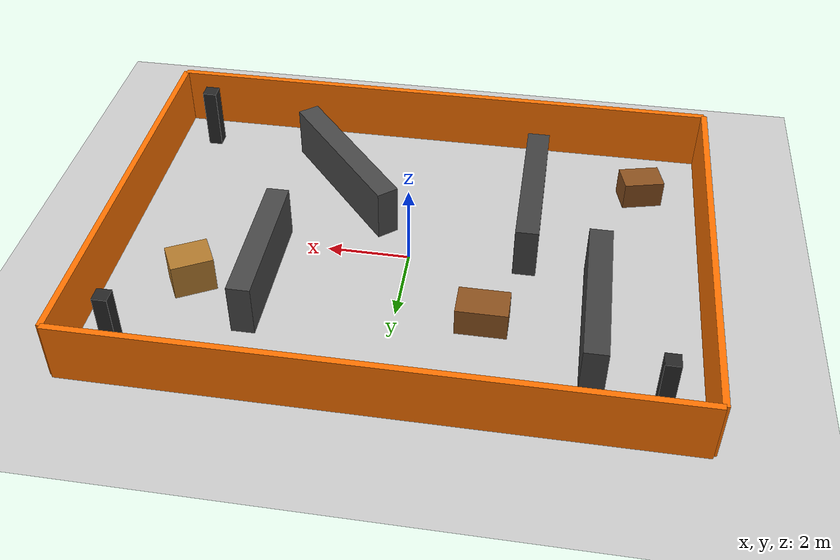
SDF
<?xml version="1.0" ?> <!-- This line says the file is XML. Gazebo world files are XML-based. -->
<sdf version="1.6"> <!-- starts the SDF document. SDF means Simulation Description Format. URDF/Xacro describes the robot.
SDF describes the Gazebo simulation world.-->
<!--This File defines the Gazebo environment your robot drives in -->
  <world name="warehouse_world"> <!-- This creates a Gazebo world named warehouse_world -->

    <include> <!-- includes Gazebo’s built-in sun model. It gives the world default lighting.-->
      <uri>model://sun</uri>
    </include>

    <include>
      <uri>model://ground_plane</uri>
    </include>

    <scene>
      <ambient>0.65 0.65 0.65 1</ambient>
      <background>0.75 0.78 0.82 1</background>
      <shadows>true</shadows>
    </scene>

    <physics name="default_physics" default="0" type="ode">
      <max_step_size>0.001</max_step_size>
      <real_time_factor>1.0</real_time_factor>
      <real_time_update_rate>1000</real_time_update_rate>
    </physics>

    <!-- Outer walls: 14 m x 10 m room                         -->

    <model name="north_wall">
      <static>true</static>
      <pose>0 5 0.75 0 0 0</pose>
      <link name="link">
        <collision name="collision">
          <geometry><box><size>14 0.15 1.5</size></box></geometry>
        </collision>
        <visual name="visual">
          <geometry><box><size>14 0.15 1.5</size></box></geometry>
          <material>
            <ambient>1.0 0.45 0.0 1</ambient>
            <diffuse>1.0 0.45 0.0 1</diffuse>
          </material>
        </visual>
      </link>
    </model>

    <model name="south_wall">
      <static>true</static>
      <pose>0 -5 0.75 0 0 0</pose>
      <link name="link">
        <collision name="collision">
          <geometry><box><size>14 0.15 1.5</size></box></geometry>
        </collision>
        <visual name="visual">
          <geometry><box><size>14 0.15 1.5</size></box></geometry>
          <material>
            <ambient>1.0 0.45 0.0 1</ambient>
            <diffuse>1.0 0.45 0.0 1</diffuse>
          </material>
        </visual>
      </link>
    </model>

    <model name="east_wall">
      <static>true</static>
      <pose>7 0 0.75 0 0 0</pose>
      <link name="link">
        <collision name="collision">
          <geometry><box><size>0.15 10 1.5</size></box></geometry>
        </collision>
        <visual name="visual">
          <geometry><box><size>0.15 10 1.5</size></box></geometry>
          <material>
            <ambient>1.0 0.45 0.0 1</ambient>
            <diffuse>1.0 0.45 0.0 1</diffuse>
          </material>
        </visual>
      </link>
    </model>

    <model name="west_wall">
      <static>true</static>
      <pose>-7 0 0.75 0 0 0</pose>
      <link name="link">
        <collision name="collision">
          <geometry><box><size>0.15 10 1.5</size></box></geometry>
        </collision>
        <visual name="visual">
          <geometry><box><size>0.15 10 1.5</size></box></geometry>
          <material>
            <ambient>1.0 0.45 0.0 1</ambient>
            <diffuse>1.0 0.45 0.0 1</diffuse>
          </material>
        </visual>
      </link>
    </model>

    <!-- Shelf rows / aisles                                   -->

    <model name="left_shelf_1">
      <static>true</static>
      <pose>-4.5 1.8 0.65 0 0 0</pose>
      <link name="link">
        <collision name="collision">
          <geometry><box><size>0.55 4.0 1.3</size></box></geometry>
        </collision>
        <visual name="visual">
          <geometry><box><size>0.55 4.0 1.3</size></box></geometry>
          <material>
            <ambient>0.25 0.25 0.25 1</ambient>
            <diffuse>0.25 0.25 0.25 1</diffuse>
          </material>
        </visual>
      </link>
    </model>

    <model name="left_shelf_2">
      <static>true</static>
      <pose>-2.8 -1.8 0.65 0 0 0</pose>
      <link name="link">
        <collision name="collision">
          <geometry><box><size>0.55 4.0 1.3</size></box></geometry>
        </collision>
        <visual name="visual">
          <geometry><box><size>0.55 4.0 1.3</size></box></geometry>
          <material>
            <ambient>0.25 0.25 0.25 1</ambient>
            <diffuse>0.25 0.25 0.25 1</diffuse>
          </material>
        </visual>
      </link>
    </model>

    <model name="middle_shelf_1">
      <static>true</static>
      <pose>2.0 -2.4 0.65 0 0 0.7</pose>
      <link name="link">
        <collision name="collision">
          <geometry><box><size>0.55 4.2 1.3</size></box></geometry>
        </collision>
        <visual name="visual">
          <geometry><box><size>0.55 4.2 1.3</size></box></geometry>
          <material>
            <ambient>0.28 0.28 0.28 1</ambient>
            <diffuse>0.28 0.28 0.28 1</diffuse>
          </material>
        </visual>
      </link>
    </model>

    <model name="right_shelf_1">
      <static>true</static>
      <pose>3.3 1.3 0.65 0 0 0</pose>
      <link name="link">
        <collision name="collision">
          <geometry><box><size>0.55 3.6 1.3</size></box></geometry>
        </collision>
        <visual name="visual">
          <geometry><box><size>0.55 3.6 1.3</size></box></geometry>
          <material>
            <ambient>0.28 0.28 0.28 1</ambient>
            <diffuse>0.28 0.28 0.28 1</diffuse>
          </material>
        </visual>
      </link>
    </model>

    <!-- Boxes / pallets                                       -->

    <model name="pallet_1">
      <static>true</static>
      <pose>-5.5 -3.2 0.35 0 0 0.25</pose>
      <link name="link">
        <collision name="collision">
          <geometry><box><size>1.0 0.7 0.7</size></box></geometry>
        </collision>
        <visual name="visual">
          <geometry><box><size>1.0 0.7 0.7</size></box></geometry>
          <material>
            <ambient>0.55 0.32 0.12 1</ambient>
            <diffuse>0.55 0.32 0.12 1</diffuse>
          </material>
        </visual>
      </link>
    </model>

    <model name="pallet_2">
      <static>true</static>
      <pose>-2.0 2.0 0.35 0 0 0.0</pose>
      <link name="link">
        <collision name="collision">
          <geometry><box><size>1.2 0.8 0.7</size></box></geometry>
        </collision>
        <visual name="visual">
          <geometry><box><size>1.2 0.8 0.7</size></box></geometry>
          <material>
            <ambient>0.55 0.32 0.12 1</ambient>
            <diffuse>0.55 0.32 0.12 1</diffuse>
          </material>
        </visual>
      </link>
    </model>

    <model name="box_stack_1">
      <static>true</static>
      <pose>4.9 1.7 0.45 0 0 0.5</pose>
      <link name="link">
        <collision name="collision">
          <geometry><box><size>1.0 0.8 0.9</size></box></geometry>
        </collision>
        <visual name="visual">
          <geometry><box><size>1.0 0.8 0.9</size></box></geometry>
          <material>
            <ambient>0.70 0.48 0.18 1</ambient>
            <diffuse>0.70 0.48 0.18 1</diffuse>
          </material>
        </visual>
      </link>
    </model>
    <!-- Pillars                                               -->

    <model name="pillar_1">
      <static>true</static>
      <pose>-6 4 0.8 0 0 0</pose>
      <link name="link">
        <collision name="collision">
          <geometry><box><size>0.35 0.35 1.6</size></box></geometry>
        </collision>
        <visual name="visual">
          <geometry><box><size>0.35 0.35 1.6</size></box></geometry>
          <material>
            <ambient>0.15 0.15 0.15 1</ambient>
            <diffuse>0.15 0.15 0.15 1</diffuse>
          </material>
        </visual>
      </link>
    </model>

    <model name="pillar_2">
      <static>true</static>
      <pose>6 4 0.8 0 0 0</pose>
      <link name="link">
        <collision name="collision">
          <geometry><box><size>0.35 0.35 1.6</size></box></geometry>
        </collision>
        <visual name="visual">
          <geometry><box><size>0.35 0.35 1.6</size></box></geometry>
          <material>
            <ambient>0.15 0.15 0.15 1</ambient>
            <diffuse>0.15 0.15 0.15 1</diffuse>
          </material>
        </visual>
      </link>
    </model>

    <model name="pillar_3">
      <static>true</static>
      <pose>6 -4 0.8 0 0 0</pose>
      <link name="link">
        <collision name="collision">
          <geometry><box><size>0.35 0.35 1.6</size></box></geometry>
        </collision>
        <visual name="visual">
          <geometry><box><size>0.35 0.35 1.6</size></box></geometry>
          <material>
            <ambient>0.15 0.15 0.15 1</ambient>
            <diffuse>0.15 0.15 0.15 1</diffuse>
          </material>
        </visual>
      </link>
    </model>

    <!-- Extra light -->
    <light name="warehouse_light_main" type="point">
      <pose>0 0 6 0 0 0</pose>
      <diffuse>0.9 0.9 0.9 1</diffuse>
      <specular>0.2 0.2 0.2 1</specular>
      <attenuation>
        <range>30</range>
        <constant>0.5</constant>
        <linear>0.01</linear>
        <quadratic>0.001</quadratic>
      </attenuation>
    </light>

  </world>
</sdf>
